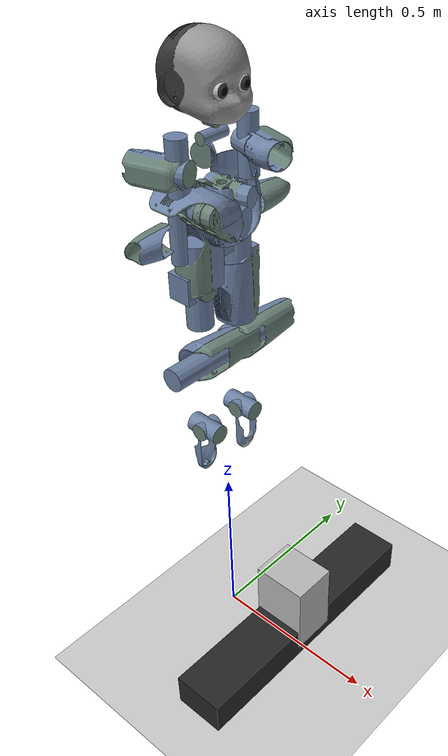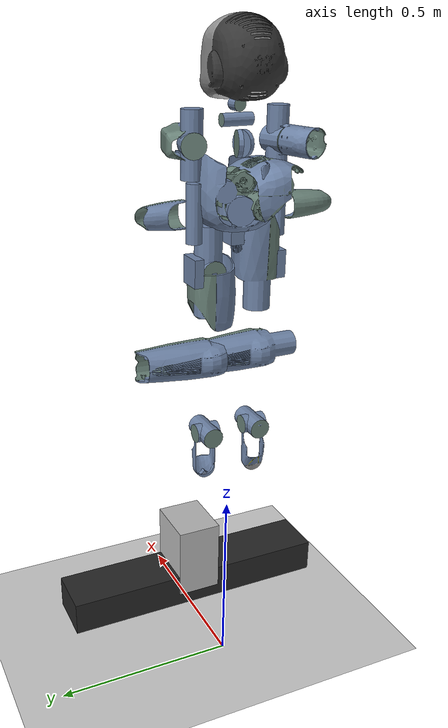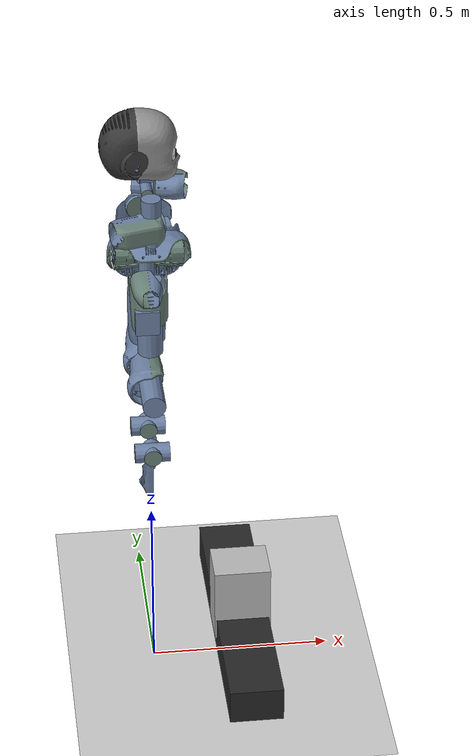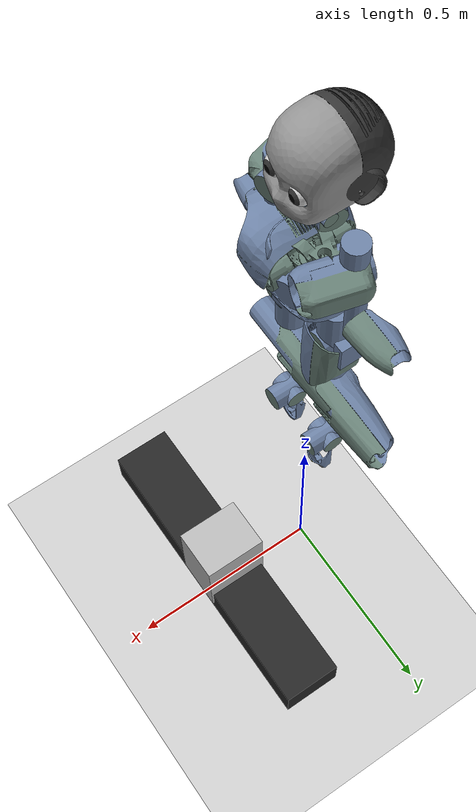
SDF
<sdf version='1.6'>
  <world name='default'>
    <light name='sun' type='directional'>
      <cast_shadows>0</cast_shadows>
      <pose frame=''>0 0 10 0 -0 0</pose>
      <diffuse>0.8 0.8 0.8 1</diffuse>
      <specular>0.2 0.2 0.2 1</specular>
      <attenuation>
        <range>1000</range>
        <constant>0.9</constant>
        <linear>0.01</linear>
        <quadratic>0.001</quadratic>
      </attenuation>
      <direction>-0.5 0.1 -0.9</direction>
    </light>
    <light name='sun2' type='directional'>
      <cast_shadows>0</cast_shadows>
      <pose frame=''>0 -5 1 1.57 0 0</pose>
      <diffuse>0.8 0.8 0.8 1</diffuse>
      <specular>0.2 0.2 0.2 1</specular>
      <attenuation>
        <range>1000</range>
        <constant>0.9</constant>
        <linear>0.01</linear>
        <quadratic>0.001</quadratic>
      </attenuation>
      <direction>-0.5 0.1 -0.9</direction>
    </light>
    <model name='ground_plane'>
      <static>1</static>
      <link name='link'>
        <collision name='collision'>
          <geometry>
            <plane>
              <normal>0 0 1</normal>
              <size>100 100</size>
            </plane>
          </geometry>
          <surface>
            <friction>
              <ode>
                <mu>100</mu>
                <mu2>50</mu2>
              </ode>
              <torsional>
                <ode/>
              </torsional>
            </friction>
            <contact>
              <ode/>
            </contact>
            <bounce/>
          </surface>
          <max_contacts>10</max_contacts>
        </collision>
        <visual name='visual'>
          <cast_shadows>0</cast_shadows>
          <geometry>
            <plane>
              <normal>0 0 1</normal>
              <size>100 100</size>
            </plane>
          </geometry>
          <material>
            <script>
              <uri>file://media/materials/scripts/gazebo.material</uri>
              <name>Gazebo/Grey</name>
            </script>
          </material>
        </visual>
        <self_collide>0</self_collide>
        <enable_wind>0</enable_wind>
        <kinematic>0</kinematic>
      </link>
    </model>
    <gravity>0 0 -9.8</gravity>
    <magnetic_field>6e-06 2.3e-05 -4.2e-05</magnetic_field>
    <atmosphere type='adiabatic'/>
    <physics name='default_physics' default='0' type='ode'>
      <max_step_size>0.0005</max_step_size>
      <real_time_factor>1</real_time_factor>
      <real_time_update_rate>1000</real_time_update_rate>
    </physics>
    <scene>
      <ambient>0.4 0.4 0.4 1</ambient>
      <background>0.7 0.7 0.7 1</background>
      <shadows>0</shadows>
    </scene>
    <wind/>
    <spherical_coordinates>
      <surface_model>EARTH_WGS84</surface_model>
      <latitude_deg>0</latitude_deg>
      <longitude_deg>0</longitude_deg>
      <elevation>0</elevation>
      <heading_deg>0</heading_deg>
    </spherical_coordinates>
    <include>
     <uri>../robots/icub</uri>
      <name>iCub</name>
      <pose frame=''>0 0 0.6 0 -0 3.14</pose>
    </include>
    <gui fullscreen='0'>
      <camera name='user_camera'>
        <pose frame=''>0.8 -2 0.5 -0 0.0 1.82</pose>
        <view_controller>orbit</view_controller>
        <projection_type>perspective</projection_type>
      </camera>
    </gui>
    <include>
      <uri>../objects/base3</uri>
      <name>base3</name>
      <pose frame=''>0.25 0.00 0.1 0 -0 0</pose>
    </include>
    <include>
      <uri>../objects/BoxWood</uri>
      <name>BoxWood</name>
      <pose frame=''>0.25 0.00 0.2 0 -0 0</pose>
    </include>
    <plugin name="color_change" filename="../plugins/colorChange_world/build/libcolor_change.so"/>
  </world>
</sdf>

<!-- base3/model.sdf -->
<sdf version='1.6'>
  <model name='base3'>
    <link name='base_3'>
      <inertial>
        <mass>212.8</mass>
        <inertia>
          <ixx>9.39867</ixx>
          <ixy>0</ixy>
          <ixz>0</ixz>
          <iyy>9.39867</iyy>
          <iyz>0</iyz>
          <izz>1.41867</izz>
        </inertia>
        <pose frame=''>0 0 0 0 -0 0</pose>
      </inertial>
      <self_collide>0</self_collide>
      <enable_wind>0</enable_wind>
      <kinematic>0</kinematic>
      <pose frame=''>0 0 0 0 -0 0</pose>
      <gravity>1</gravity>
      <visual name='visual'>
        <pose frame=''>0 0 0 0 -0 0</pose>
        <geometry>
          <box>
            <size>0.15 0.8 0.1</size>
          </box>
        </geometry>
        <material>
          <shader type='pixel'>
            <normal_map>__default__</normal_map>
          </shader>
          <script>
            <name>ModelPreview_1::link::visual_MATERIAL_ModelPreview_1::link::visual_MATERIAL_</name>
            <uri>__default__</uri>
          </script>
          <ambient>0.15 0.15 0.15 1</ambient>
          <diffuse>0.15 0.15 0.15 1</diffuse>
          <specular>0.15 0.15 0.15 1</specular>
          <emissive>0.15 0.15 0.15 1</emissive>
        </material>
        <transparency>0</transparency>
        <cast_shadows>0</cast_shadows>
      </visual>
      <collision name='collision'>
        <laser_retro>0</laser_retro>
        <max_contacts>10</max_contacts>
        <pose frame=''>0 0 0 0 -0 0</pose>
        <geometry>
          <box>
            <size>0.15 0.8 0.1</size>
          </box>
        </geometry>
        <surface>
          <friction>
            <ode>
              <mu>1</mu>
              <mu2>1</mu2>
              <fdir1>0 0 0</fdir1>
              <slip1>0</slip1>
              <slip2>0</slip2>
            </ode>
            <torsional>
              <coefficient>1</coefficient>
              <patch_radius>0</patch_radius>
              <surface_radius>0</surface_radius>
              <use_patch_radius>1</use_patch_radius>
              <ode>
                <slip>0</slip>
              </ode>
            </torsional>
          </friction>
          <bounce>
            <restitution_coefficient>0</restitution_coefficient>
            <threshold>1e+06</threshold>
          </bounce>
          <contact>
            <collide_without_contact>0</collide_without_contact>
            <collide_without_contact_bitmask>1</collide_without_contact_bitmask>
            <collide_bitmask>1</collide_bitmask>
            <ode>
              <soft_cfm>0</soft_cfm>
              <soft_erp>0.2</soft_erp>
              <kp>1e+13</kp>
              <kd>1</kd>
              <max_vel>0.01</max_vel>
              <min_depth>0</min_depth>
            </ode>
            <bullet>
              <split_impulse>1</split_impulse>
              <split_impulse_penetration_threshold>-0.01</split_impulse_penetration_threshold>
              <soft_cfm>0</soft_cfm>
              <soft_erp>0.2</soft_erp>
              <kp>1e+13</kp>
              <kd>1</kd>
            </bullet>
          </contact>
        </surface>
      </collision>
    </link>
    <static>0</static>
    <allow_auto_disable>1</allow_auto_disable>
  </model>
</sdf>

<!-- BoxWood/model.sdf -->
<sdf version='1.6'>
  <model name='BoxWood'>
    <link name='link'>
      <inertial>
        <mass>0.470029</mass>
        <inertia>
          <ixx>0.0013484</ixx>
          <ixy>0</ixy>
          <ixz>0</ixz>
          <iyy>0.00131238</iyy>
          <iyz>0</iyz>
          <izz>0.00199015</izz>
        </inertia>
        <pose frame=''>0 0 0 0 -0 0</pose>
      </inertial>
      <self_collide>0</self_collide>
      <enable_wind>0</enable_wind>
      <kinematic>0</kinematic>
      <pose frame=''>0 0 0 0 -0 0</pose>
      <gravity>1</gravity>
      <visual name='visual'>
        <pose frame=''>0 0 0 0 -0 0</pose>
        <geometry>
          <box>
            <size>0.16 0.13 0.22</size>
          </box>
        </geometry>
          <material>
            <script>
              <uri>../objects/BoxWood/materials/scripts</uri>
              <uri>../objects/BoxWood/materials/textures</uri>
              <name>BrickBox/Diffuse</name>
            </script>
          </material>
        <transparency>0</transparency>
        <cast_shadows>0</cast_shadows>
      </visual>
      <collision name='collision'>
        <laser_retro>0</laser_retro>
        <max_contacts>10</max_contacts>
        <pose frame=''>0 0 0 0 -0 0</pose>
        <geometry>
          <box>
            <size>0.16 0.13 0.22</size>
          </box>
        </geometry>
        <surface>
          <friction>
            <ode>
              <mu>1</mu>
              <mu2>1</mu2>
              <fdir1>0 0 0</fdir1>
              <slip1>0</slip1>
              <slip2>0</slip2>
            </ode>
            <torsional>
              <coefficient>1</coefficient>
              <patch_radius>0</patch_radius>
              <surface_radius>0</surface_radius>
              <use_patch_radius>1</use_patch_radius>
              <ode>
                <slip>0</slip>
              </ode>
            </torsional>
          </friction>
          <bounce>
            <restitution_coefficient>0</restitution_coefficient>
            <threshold>1e+06</threshold>
          </bounce>
          <contact>
            <collide_without_contact>0</collide_without_contact>
            <collide_without_contact_bitmask>1</collide_without_contact_bitmask>
            <collide_bitmask>1</collide_bitmask>
            <ode>
              <soft_cfm>0</soft_cfm>
              <soft_erp>0.2</soft_erp>
              <kp>100000</kp>
              <kd>1</kd>
              <max_vel>0.1</max_vel>
              <min_depth>0.001</min_depth>
            </ode>
            <bullet>
              <split_impulse>1</split_impulse>
              <split_impulse_penetration_threshold>-0.01</split_impulse_penetration_threshold>
              <soft_cfm>0</soft_cfm>
              <soft_erp>0.2</soft_erp>
              <kp>100000</kp>
              <kd>1</kd>
            </bullet>
          </contact>
        </surface>
      </collision>
    </link>
    <static>0</static>
    <allow_auto_disable>1</allow_auto_disable>
	<plugin name="get_object_world_pose" filename="libgazebo_yarp_GetObjectWorldPose.so" >
    </plugin>
  </model>
</sdf>
